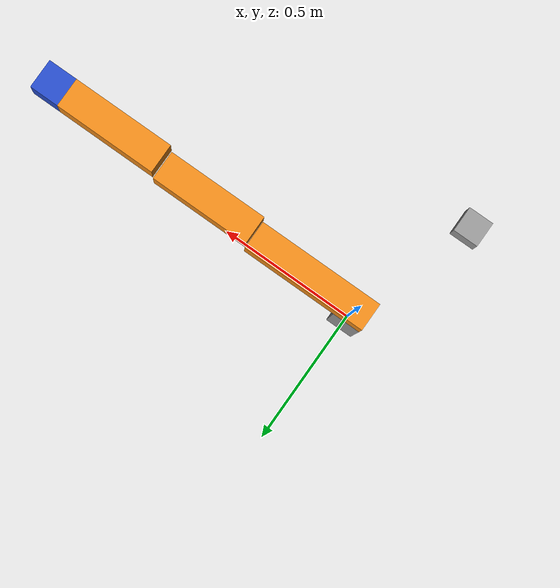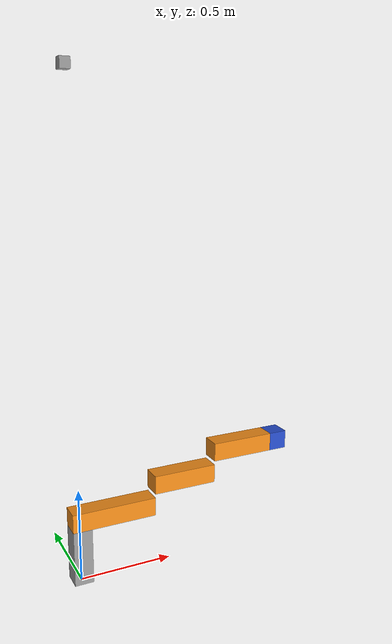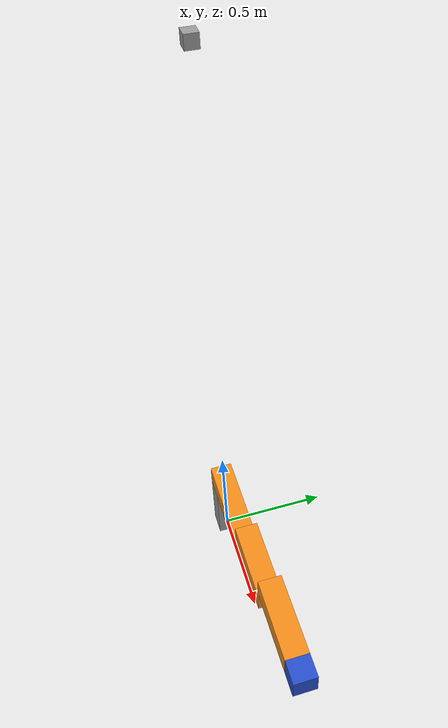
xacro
<?xml version="1.0"?>
<!-- Revolute-Revolute Manipulator -->
<robot name="3linkbot" xmlns:xacro="http://www.ros.org/wiki/xacro">

  <!-- Constants for robot dimensions -->
  <xacro:property name="PI" value="3.1415926535897931"/>
  <xacro:property name="mass" value="1" /> <!-- arbitrary value for mass -->
  <xacro:property name="width" value="0.1" /> <!-- Square dimensions (widthxwidth) of beams -->
  <xacro:property name="height1" value="0.3" /> <!-- Link 1 -->
  <xacro:property name="height2" value="0.45" /> <!-- Link 2 -->
  <xacro:property name="height3" value="0.35" /> <!-- Link 3 -->
  <xacro:property name="height4" value="0.35" /> <!-- Link 4 -->
  <xacro:property name="camera_link" value="0.05" /> <!-- Size of square 'camera' box -->
  <xacro:property name="axel_offset" value="0.05" /> <!-- Space btw top of beam and the each joint -->

  <!-- Import all Gazebo-customization elements, including Gazebo colors -->
  <xacro:include filename="$(find encoderless_vs)/urdf/3linkbot.gazebo" />
  <!-- Import Rviz colors -->
  <xacro:include filename="$(find encoderless_vs)/urdf/materials.xacro" />

   <!-- Used for fixing the flatboard to Gazebo 'base_link' -->

  <!-- Used for fixing robot to Gazebo 'base_link' -->
  <link name="world"/>

  <joint name="joint0" type="fixed">
    <parent link="world"/>
    <child link="link1"/>
  </joint>

  <!-- Base Link -->
  <link name="link1">
    <collision>
      <origin xyz="0 0 ${height1/2}" rpy="0 0 0"/>
      <geometry>
	<box size="${width} ${width} ${height1}"/>
      </geometry>
    </collision>

    <visual>
      <origin xyz="0 0 ${height1/2}" rpy="0 0 0"/>
      <geometry>
	<box size="${width} ${width} ${height1}"/>
      </geometry>
      <material name="GreyTransparent"/>
    </visual>

    <inertial>
      <origin xyz="0 0 ${height1/2}" rpy="0 0 0"/>
      <mass value="${mass}"/>
      <inertia
	  ixx="${mass / 12.0 * (width*width + height1*height1)}" ixy="0.0" ixz="0.0"
	  iyy="${mass / 12.0 * (height1*height1 + width*width)}" iyz="0.0"
	  izz="${mass / 12.0 * (width*width + width*width)}"/>
    </inertial>
  </link>

  <joint name="joint1" type="continuous">
    <parent link="link1"/>
    <child link="link2"/>
    <origin xyz="0 0 ${height1 + axel_offset}" rpy="0 1.5708 0"/>
    <axis xyz="1 0 0"/>
    <dynamics damping="0.7"/>
  </joint>

  <!-- Middle Link -->
  <link name="link2">
    <collision>
      <origin xyz="0 0 ${height2/2 - axel_offset}" rpy="0 0 0"/>
      <geometry>
	<box size="${width} ${width} ${height2}"/>
      </geometry>
    </collision>

    <visual>
      <origin xyz="0 0 ${height2/2 - axel_offset}" rpy="0 0 0"/>
      <geometry>
	<box size="${width} ${width} ${height2}"/>
      </geometry>
      <material name="orange"/>
    </visual>

    <inertial>
      <origin xyz="0 0 ${height2/2 - axel_offset}" rpy="0 0 0"/>
      <mass value="${mass}"/>
      <inertia
	  ixx="${mass / 12.0 * (width*width + height2*height2)}" ixy="0.0" ixz="0.0"
	  iyy="${mass / 12.0 * (height2*height2 + width*width)}" iyz="0.0"
	  izz="${mass / 12.0 * (width*width + width*width)}"/>
    </inertial>
  </link>

  <joint name="joint2" type="revolute">
    <parent link="link2"/>
    <child link="link3"/>
    <origin xyz="-${width+0.02} 0 ${height2}" rpy="0 0 0"/>
    <axis xyz="1 0 0"/>
    <dynamics damping="0.7"/>
    <limit effort="30" velocity="1.0" lower="-1.85" upper="1.85" />
  </joint>

  <link name="link3">
    <collision>
      <origin xyz="0 0 ${height3/2 - axel_offset}" rpy="0 0 0"/>
      <geometry>
	<box size="${width} ${width} ${height3}"/>
      </geometry>
    </collision>

    <visual>
      <origin xyz="0 0 ${height3/2 - axel_offset}" rpy="0 0 0"/>
      <geometry>
	<box size="${width} ${width} ${height3}"/>
      </geometry>
      <material name="orange"/>
    </visual>

    <inertial>
      <origin xyz="0 0 ${height3/2 - axel_offset}" rpy="0 0 0"/>
      <mass value="${mass}"/>
      <inertia
	  ixx="${mass / 12.0 * (width*width + height3*height3)}" ixy="0.0" ixz="0.0"
	  iyy="${mass / 12.0 * (height3*height3 + width*width)}" iyz="0.0"
	  izz="${mass / 12.0 * (width*width + width*width)}"/>
    </inertial>
  </link>

  <joint name="joint3" type="revolute">
    <parent link="link3"/>
    <child link="link4"/>
    <origin xyz="-${width+0.02} 0 ${height3}" rpy="0 0 0"/>
    <axis xyz="1 0 0"/>
    <dynamics damping="0.7"/>
    <limit effort="30" velocity="1.0" lower="-1.85" upper="1.85" />
  </joint>

  <link name="link4">
    <collision>
      <origin xyz="0 0 ${height4/2 - axel_offset}" rpy="0 0 0"/>
      <geometry>
	<box size="${width} ${width} ${height4}"/>
      </geometry>
    </collision>

    <visual>
      <origin xyz="0 0 ${height4/2 - axel_offset}" rpy="0 0 0"/>
      <geometry>
	<box size="${width} ${width} ${height4}"/>
      </geometry>
      <material name="orange"/>
    </visual>

    <inertial>
      <origin xyz="0 0 ${height4/2 - axel_offset}" rpy="0 0 0"/>
      <mass value="${mass}"/>
      <inertia
	  ixx="${mass / 12.0 * (width*width + height4*height4)}" ixy="0.0" ixz="0.0"
	  iyy="${mass / 12.0 * (height4*height4 + width*width)}" iyz="0.0"
	  izz="${mass / 12.0 * (width*width + width*width)}"/>
    </inertial>
  </link>

  <joint name="joint4" type="fixed">
    <parent link="link4"/>
    <child link="marker_link"/>
    <origin xyz="0.0 0 ${height4}" rpy="0 0 0"/>
    <axis xyz="1 0 0"/>
    <dynamics damping="0.7"/>
  </joint>

  <link name="marker_link">
    <collision>
      <origin xyz="0 0 0" rpy="0 0 0"/>
      <geometry>
	<box size="0.1 0.1 0.1"/>
      </geometry>
    </collision>

    <visual>
      <origin xyz="0 0 0" rpy="0 0 0"/>
      <geometry>
	<box size="0.1 0.1 0.1"/>
      </geometry>
      <material name="blue"/>
    </visual>

    <inertial>
      <mass value="1e-5" />
      <origin xyz="0 0 0" rpy="0 0 0"/>
      <inertia ixx="1e-6" ixy="0" ixz="0" iyy="1e-6" iyz="0" izz="1e-6" />
    </inertial>
  </link> -->

  <joint name="camera_joint" type="fixed">
    <axis xyz="0 0 0" /> -->
    <origin xyz="0 0 2.5" rpy="0 ${pi/2} 0"/> <!-- xyz="0.25 0.25 2.5 -->
    <parent link="world"/>
    <child link="camera_link"/>
  </joint>

  <!-- Camera -->
  <link name="camera_link">
    <collision>
      <origin xyz="0 0 0" rpy="0 0 0"/>
      <geometry>
	<box size="${camera_link} ${camera_link} ${camera_link}"/>
      </geometry>
    </collision>

    <visual>
      <origin xyz="0 0 0" rpy="0 0 0"/>
      <geometry>
	<box size="${camera_link} ${camera_link} ${camera_link}"/>
      </geometry>
      <material name="GreyTransparent"/>
    </visual>

    <inertial>
      <mass value="1e-5" />
      <origin xyz="0 0 0" rpy="0 0 0"/>
      <inertia ixx="1e-6" ixy="0" ixz="0" iyy="1e-6" iyz="0" izz="1e-6" />
    </inertial>
  </link>

  <!-- generate an optical frame http://www.ros.org/reps/rep-0103.html#suffix-frames
      so that ros and opencv can operate on the camera frame correctly -->
  <joint name="camera_optical_joint" type="fixed">
    <!-- these values have to be these values otherwise the gazebo camera image
        won't be aligned properly with the frame it is supposedly originating from -->
    <origin xyz="0 0 0" rpy="${-pi/2} 0 ${-pi/2}"/> #${-pi/2} 0 ${-pi/2}
    <parent link="camera_link"/>
    <child link="camera_link_optical"/>
  </joint>

  <link name="camera_link_optical">
  </link>

  <transmission name="tran1">
    <type>transmission_interface/SimpleTransmission</type>
    <joint name="joint1">
      <hardwareInterface>hardware_interface/VelocityJointInterface</hardwareInterface>
    </joint>
    <actuator name="motor1">
      <hardwareInterface>hardware_interface/VelocityJointInterface</hardwareInterface>
      <mechanicalReduction>1</mechanicalReduction>
    </actuator>
  </transmission>

  <transmission name="tran2">
    <type>transmission_interface/SimpleTransmission</type>
    <joint name="joint2">
      <hardwareInterface>hardware_interface/VelocityJointInterface</hardwareInterface>
    </joint>
    <actuator name="motor2">
      <hardwareInterface>hardware_interface/VelocityJointInterface</hardwareInterface>
      <mechanicalReduction>1</mechanicalReduction>
    </actuator>
  </transmission>

  <transmission name="tran3">
    <type>transmission_interface/SimpleTransmission</type>
    <joint name="joint3">
      <hardwareInterface>hardware_interface/VelocityJointInterface</hardwareInterface>
    </joint>
    <actuator name="motor3">
      <hardwareInterface>hardware_interface/VelocityJointInterface</hardwareInterface>
      <mechanicalReduction>1</mechanicalReduction>
    </actuator>
  </transmission>

</robot>
